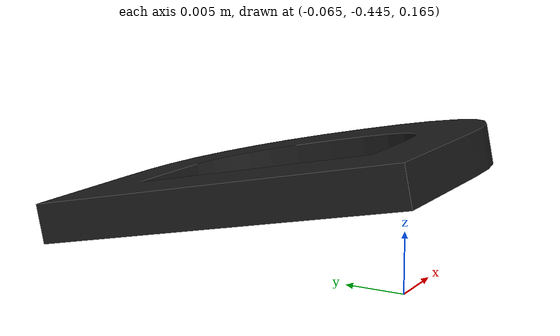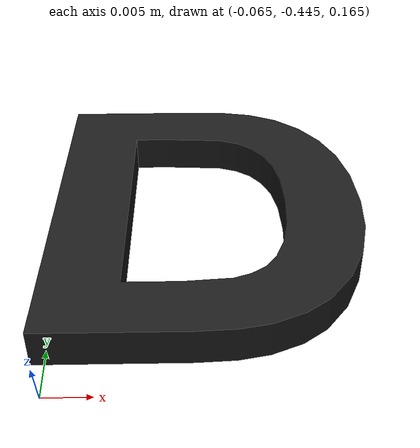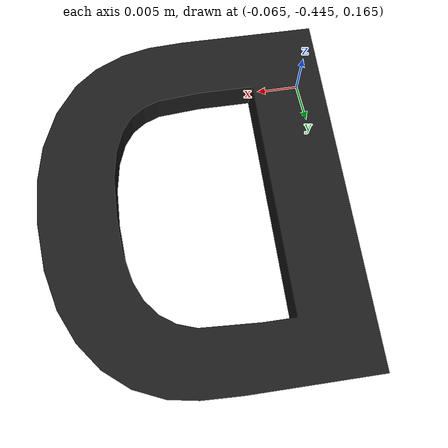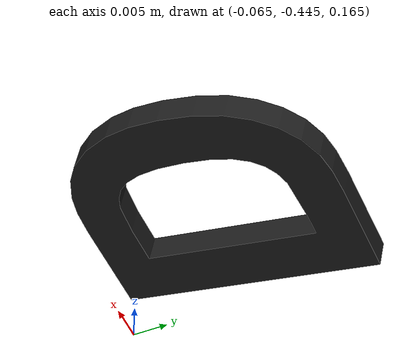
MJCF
<mujoco model="original-8">
  <default>
    <default class="visual">
      <geom group="2" type="mesh" contype="0" conaffinity="0"/>
    </default>
    <default class="collision">
      <geom group="3" type="mesh"/>
    </default>
  </default>
  <asset>
    <material name="material_0_0" specular="0.06666666666666667" shininess="0.03" rgba="0.11372549019607843 0.11372549019607843 0.11372549019607843 1"/>
    <mesh file="original-8.obj"/>
  </asset>
  <worldbody>
    <body name="original-8">
      <geom material="material_0_0" mesh="original-8" class="visual"/>
      <geom mesh="original-8" class="collision"/>
    </body>
  </worldbody>
</mujoco>
